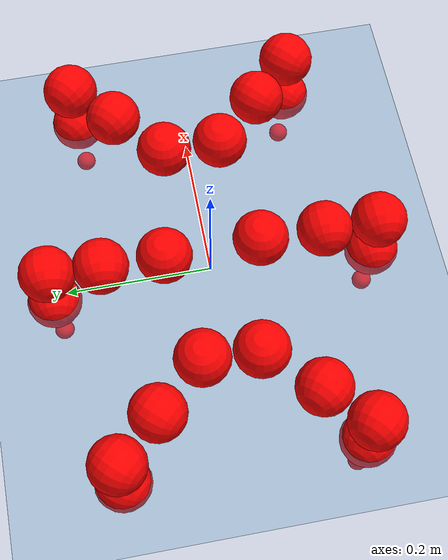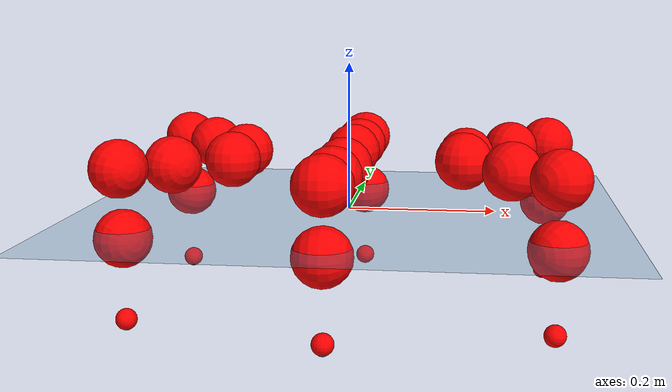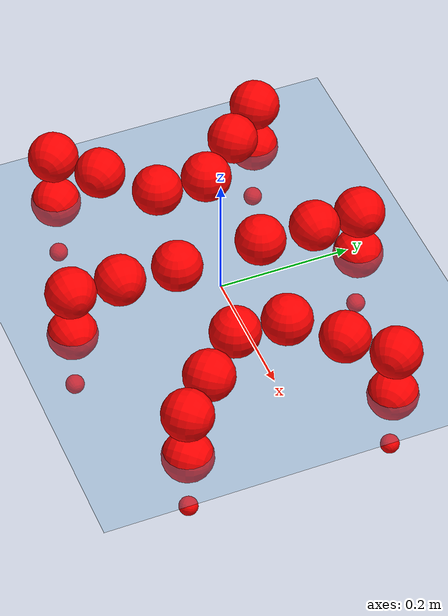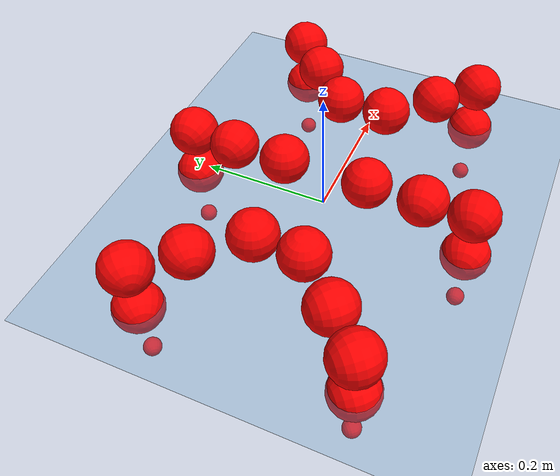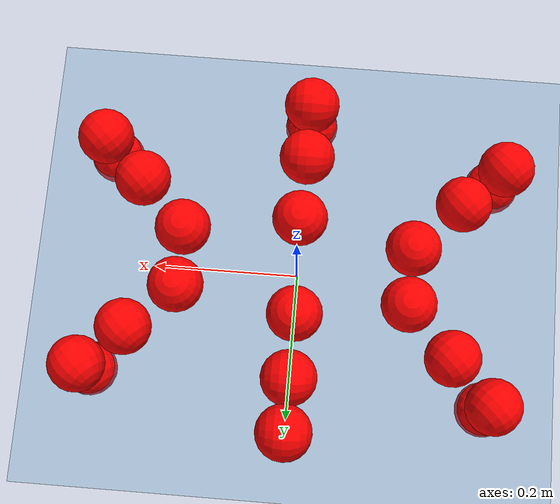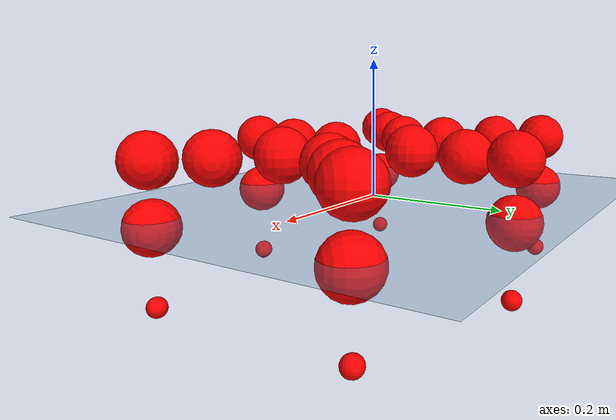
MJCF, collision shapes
<mujoco model="Golem">
  <compiler angle="radian" assetdir="assets" balanceinertia="true" inertiafromgeom="false"/>

  <option timestep="0.005" density="1.2" viscosity="2e-05"/>

  <size nkey="1"/>

  <visual>
    <quality shadowsize="8192"/>
    <map shadowclip="0.5"/>
  </visual>

  <default>
    <default class="/">
      <joint armature="0.01" damping="0.01" frictionloss="0.01"/>
      <geom contype="0" conaffinity="0" group="1" solref="-1000 -80"/>
      <site size="0.01 0.005 0.005" group="5"/>
      <general forcelimited="true" biastype="affine" gainprm="25" biasprm="0 -25 -0.5"/>
      <default class="visual">
        <geom type="mesh" group="2"/>
      </default>
      <default class="collision">
        <geom group="3"/>
      </default>
      <default class="foot">
        <geom size="0.01 0 0" condim="6" group="4" priority="1" solimp="0.015 1 0.01"/>
      </default>
      <default class="reward_collision_sphere">
        <geom group="5" rgba="1 0 0 1"/>
      </default>
    </default>
  </default>

  <asset>
    <texture type="skybox" colorspace="auto" name="//unnamed_texture_0" builtin="gradient" rgb1="0.95 0.95 0.95" rgb2="0.95 0.95 0.95" width="100" height="600"/>
    <texture type="2d" colorspace="auto" name="texplane" builtin="checker" rgb1="0.345 0.575 0.748" rgb2="0.345 0.575 0.748" markrgb="1 1 1" width="512" height="512"/>
    <material name="MatPlane" class="/" texture="texplane" texuniform="true" texrepeat="2 2" specular="0.9"/>
    <mesh name="body" class="/" file="body.stl" scale="0.001 0.001 0.001"/>
    <mesh name="coxa" class="/" file="coxa.stl" scale="0.001 0.001 0.001"/>
    <mesh name="femur" class="/" file="femur.stl" scale="0.001 0.001 0.001"/>
    <mesh name="tibia" class="/" file="tibia.stl" scale="0.001 0.001 0.001"/>
    <mesh name="tarsus" class="/" file="tarsus.stl" scale="0.001 0.001 0.001"/>
  </asset>

  <worldbody>
    <geom name="floor" class="/" size="100 100 0.125" type="plane" group="0" material="MatPlane"/>
    <light name="toplight_shadow" class="/" pos="0 0 5" dir="0.0990148 0.0990148 -0.990148" type="directional" ambient="0.04 0.04 0.04" diffuse="0.55 0.55 0.55" specular="0.12 0.12 0.12"/>
    <light name="toplight_fill" class="/" pos="0 0 5" dir="0.0990148 0.0990148 -0.990148" type="directional" castshadow="false" ambient="0.04 0.04 0.04" diffuse="0.3 0.3 0.3" specular="0.08 0.08 0.08"/>
    <body name="trunk" pos="0.00096401 -0.000840831 0.000175262" quat="1 1.79878e-05 -2.50219e-05 7.31837e-05">
      <inertial pos="0.0032133 -0.000332471 -0.00237556" quat="0.99994 0.00918594 -0.00514808 -0.00288353" mass="3.21714" diaginertia="0.0103865 0.00182132 0.019086"/>
      <joint name="//unnamed_joint_0" type="free"/>
      <geom name="//unnamed_geom_1" class="/" pos="0 0 0.0720136" quat="1 0 0 0" type="mesh" rgba="0.9 0.9 0.9 1" mesh="body"/>
      <site name="imu" class="/" pos="0.125161 -0.00502372 0.10038" size="0.00944028"/>
      <camera name="track" class="/" pos="0 -1.41988 0" quat="0.707107 0.707107 0 0" mode="trackcom"/>
      <camera name="ego_camera" class="/" pos="0.129601 0 0.112521" quat="-0.5 -0.5 0.5 0.5"/>
      <body name="coxa_RR" pos="-0.176369 -0.0579423 0.0709" quat="0.38278 -0.000113158 -0.000159783 -0.92384">
        <inertial pos="-3.00171e-05 -0.00218477 0.000351642" quat="0.999997 -0.000620343 0.00248456 0.00047335" mass="0.165525" diaginertia="0.00952266 0.00170679 0.0178279"/>
        <joint name="coxa_joint_RR" class="/" pos="0 0 0" axis="-0.00373312 -0.00413584 -0.999984" range="-3.19171 3.13387" armature="0.00919131" damping="0" frictionloss="0.00949003"/>
        <geom name="//unnamed_geom_2" class="/" type="mesh" rgba="0.2 0.2 0.2 1" mesh="coxa"/>
        <geom name="//unnamed_geom_3" class="reward_collision_sphere" size="0.0377611" pos="-0.0299079 0 0"/>
        <body name="femur_RR" pos="0.0621474 0.00125409 0.00212731" quat="0.500574 -0.500435 0.499805 0.499185">
          <inertial pos="-0.000201473 0.000532915 -0.00236894" quat="1 0.000400001 0.000118202 -0.000641976" mass="0.164021" diaginertia="0.00979638 0.00175014 0.0178889"/>
          <joint name="femur_joint_RR" class="/" pos="0 0 0" axis="0.00243955 0.0137134 -0.999903" stiffness="0.00240789" range="-3.14168 3.15222" armature="0.00937866" damping="0.0029485" frictionloss="0.0102078"/>
          <geom name="//unnamed_geom_4" class="/" type="mesh" rgba="0.9 0.9 0.9 1" mesh="femur"/>
          <geom name="//unnamed_geom_5" class="reward_collision_sphere" size="0.0377611"/>
          <body name="tibia_RR" pos="-0.0020778 -0.0765514 -0.00128265" quat="7.33325e-06 1 8.43225e-05 -4.25708e-05">
            <inertial pos="0.000764395 -0.00216014 -0.000594167" quat="0.99994 -0.00940301 -0.00435109 0.00344435" mass="0.167935" diaginertia="0.0101828 0.00179112 0.01794"/>
            <joint name="tibia_joint_RR" class="/" pos="0 0 0" axis="0.0142626 0.0054127 0.999884" stiffness="0.000852572" range="-3.08582 3.14165" armature="0.00939085" damping="0.0175007" frictionloss="0.00892025"/>
            <geom name="//unnamed_geom_6" class="/" type="mesh" rgba="0.2 0.2 0.2 1" mesh="tibia"/>
            <geom name="//unnamed_geom_7" class="reward_collision_sphere" size="0.0377611"/>
            <body name="tarsus_RR" pos="0.0895027 -0.00197119 -0.00256014" quat="0.999999 1.08585e-05 0.000388379 -0.00105116">
              <inertial pos="0.059136 -0.000302573 -0.00274663" quat="0.503503 0.502098 0.488904 0.505327" mass="0.17338" diaginertia="0.00992506 0.00184289 0.0174094"/>
              <joint name="tarsus_joint_RR" class="/" pos="0 0 0" axis="0.000428861 0.000121433 1" range="-3.19279 3.15589" armature="0.00926047" damping="0" frictionloss="0.0107719"/>
              <geom name="//unnamed_geom_8" class="/" type="mesh" rgba="0.9 0.9 0.9 1" mesh="tarsus"/>
              <geom name="foot_1" class="foot" size="0.0101841" pos="0.111656 0 0" quat="0 -0.707107 0 0.707107"/>
              <geom name="//unnamed_geom_10" class="reward_collision_sphere" size="0.0377611"/>
              <geom name="//unnamed_geom_11" class="reward_collision_sphere" size="0.0141604" pos="0.10717 0 0"/>
              <site name="foot_1" class="foot" pos="0.111656 0 0" quat="0 -0.707107 0 0.707107" size="0.00944028"/>
            </body>
          </body>
        </body>
      </body>
      <body name="coxa_RM" pos="4.0882e-05 -0.0970109 0.0699458" quat="0.707364 -0.000640895 0.000122054 -0.706849">
        <inertial pos="0.00293654 0.000496253 -0.0024186" quat="1 0.000456599 -0.000828501 -0.000131698" mass="0.168534" diaginertia="0.00977385 0.00187239 0.0182544"/>
        <joint name="coxa_joint_RM" class="/" pos="0 0 0" axis="-0.00469735 0.00104716 -0.999988" range="-3.15518 3.13035" armature="0.0108278" damping="0.00952699" frictionloss="0.00991109"/>
        <geom name="//unnamed_geom_12" class="/" type="mesh" rgba="0.2 0.2 0.2 1" mesh="coxa"/>
        <geom name="//unnamed_geom_13" class="reward_collision_sphere" size="0.0377611" pos="-0.0299079 0 0"/>
        <body name="femur_RM" pos="0.056611 -0.00300679 0.00138318" quat="0.500141 -0.50046 0.499629 0.49977">
          <inertial pos="0.00222823 -0.00270785 0.000526457" quat="0.999993 0.00129905 -0.00358048 -0.000169804" mass="0.162873" diaginertia="0.009227 0.00174548 0.016968"/>
          <joint name="femur_joint_RM" class="/" pos="0 0 0" axis="0.00360058 -0.012982 -0.999909" stiffness="0.00579938" range="-3.14216 3.08907" armature="0.00943327" damping="0.0269423" frictionloss="0.00839721"/>
          <geom name="//unnamed_geom_14" class="/" type="mesh" rgba="0.9 0.9 0.9 1" mesh="femur"/>
          <geom name="//unnamed_geom_15" class="reward_collision_sphere" size="0.0377611"/>
          <body name="tibia_RM" pos="-0.00167898 -0.0744076 -0.00120877" quat="0.00102944 0.999999 -0.000428285 0.000607193">
            <inertial pos="-0.00256346 0.00182848 -0.000921011" quat="0.999925 0.0024329 0.008486 0.008528" mass="0.161887" diaginertia="0.00953449 0.00176069 0.0176049"/>
            <joint name="tibia_joint_RM" class="/" pos="0 0 0" axis="-0.00116194 0.00455334 0.999989" range="-3.14316 3.19085" armature="0.00926378" damping="0.0179386" frictionloss="0.00928539"/>
            <geom name="//unnamed_geom_16" class="/" type="mesh" rgba="0.2 0.2 0.2 1" mesh="tibia"/>
            <geom name="//unnamed_geom_17" class="reward_collision_sphere" size="0.0377611"/>
            <body name="tarsus_RM" pos="0.0858508 -0.000298818 0.000753763" quat="1 1.25218e-05 -8.21926e-06 -6.20857e-06">
              <inertial pos="0.0625584 0.00118579 0.000645278" quat="0.500063 0.500692 0.499727 0.499517" mass="0.171881" diaginertia="0.00983829 0.00178527 0.0183753"/>
              <joint name="tarsus_joint_RM" class="/" pos="0 0 0" axis="-0.00032789 9.67826e-05 1" range="-3.19587 3.08271" armature="0.00939146" damping="0.00477009" frictionloss="0.00810986"/>
              <geom name="//unnamed_geom_18" class="/" type="mesh" rgba="0.9 0.9 0.9 1" mesh="tarsus"/>
              <geom name="foot_2" class="foot" size="0.0104374" pos="0.111656 0 0" quat="0 -0.707107 0 0.707107"/>
              <geom name="//unnamed_geom_20" class="reward_collision_sphere" size="0.0377611"/>
              <geom name="//unnamed_geom_21" class="reward_collision_sphere" size="0.0141604" pos="0.10717 0 0"/>
              <site name="foot_2" class="foot" pos="0.111656 0 0" quat="0 -0.707107 0 0.707107" size="0.00944028"/>
            </body>
          </body>
        </body>
      </body>
      <body name="coxa_RF" pos="0.177165 -0.0622514 0.0751066" quat="0.924129 0.000296761 6.97416e-05 -0.382081">
        <inertial pos="0.000502273 -0.0024819 0.00295105" quat="0.999922 -0.00845995 -0.00278362 -0.00878056" mass="0.156742" diaginertia="0.00937215 0.00174027 0.0173697"/>
        <joint name="coxa_joint_RF" class="/" pos="0 0 0" axis="-0.00438314 -0.00995359 -0.999941" range="-3.09242 3.17988" armature="0.00808005" damping="0" frictionloss="0.00935941"/>
        <geom name="//unnamed_geom_22" class="/" type="mesh" rgba="0.2 0.2 0.2 1" mesh="coxa"/>
        <geom name="//unnamed_geom_23" class="reward_collision_sphere" size="0.0377611" pos="-0.0299079 0 0"/>
        <body name="femur_RF" pos="0.0589223 -0.00214956 -0.00162592" quat="0.499938 -0.500045 0.500007 0.50001">
          <inertial pos="-0.00276223 0.00236546 -0.00032117" quat="0.999999 -0.000808141 -0.000171416 0.00089871" mass="0.167261" diaginertia="0.00987973 0.00186378 0.018403"/>
          <joint name="femur_joint_RF" class="/" pos="0 0 0" axis="0.00401266 -0.00204375 -0.99999" stiffness="0.00272311" range="-3.12283 3.10009" armature="0.00938659" damping="0.00168371" frictionloss="0.00854581"/>
          <geom name="//unnamed_geom_24" class="/" type="mesh" rgba="0.9 0.9 0.9 1" mesh="femur"/>
          <geom name="//unnamed_geom_25" class="reward_collision_sphere" size="0.0377611"/>
          <body name="tibia_RF" pos="-0.000105045 -0.0789709 0.00126675" quat="-1.99371e-05 1 5.99305e-06 0.000120134">
            <inertial pos="0.000157405 0.000196092 -0.0020117" quat="0.999908 0.0015143 0.0115325 0.00698547" mass="0.165491" diaginertia="0.00982453 0.00173825 0.0185899"/>
            <joint name="tibia_joint_RF" class="/" pos="0 0 0" axis="-0.00106041 -0.00218034 0.999997" range="-3.14009 3.18236" armature="0.00963329" damping="0.00187389" frictionloss="0.0105305"/>
            <geom name="//unnamed_geom_26" class="/" type="mesh" rgba="0.2 0.2 0.2 1" mesh="tibia"/>
            <geom name="//unnamed_geom_27" class="reward_collision_sphere" size="0.0377611"/>
            <body name="tarsus_RF" pos="0.0870427 -0.000482151 0.000644033" quat="0.999999 0.00107659 -0.000613757 -0.000637684">
              <inertial pos="0.0583654 -0.000529978 0.000108945" quat="0.499806 0.499876 0.500205 0.500113" mass="0.172604" diaginertia="0.0101095 0.00179892 0.0181063"/>
              <joint name="tarsus_joint_RF" class="/" pos="0 0 0" axis="-0.0119538 -0.00233047 0.999926" stiffness="0.0235145" range="-3.08432 3.13524" armature="0.00902706" damping="0.000413727" frictionloss="0.00905716"/>
              <geom name="//unnamed_geom_28" class="/" type="mesh" rgba="0.9 0.9 0.9 1" mesh="tarsus"/>
              <geom name="foot_3" class="foot" size="0.00919135" pos="0.111656 0 0" quat="0 -0.707107 0 0.707107"/>
              <geom name="//unnamed_geom_30" class="reward_collision_sphere" size="0.0377611"/>
              <geom name="//unnamed_geom_31" class="reward_collision_sphere" size="0.0141604" pos="0.10717 0 0"/>
              <site name="foot_3" class="foot" pos="0.111656 0 0" quat="0 -0.707107 0 0.707107" size="0.00944028"/>
            </body>
          </body>
        </body>
      </body>
      <body name="coxa_LR" pos="-0.174262 0.0608443 0.0722033" quat="0.382554 5.54122e-05 -8.66558e-05 0.923933">
        <inertial pos="-0.00260413 -0.00310516 0.00150766" quat="0.999901 -0.00180338 0.00954744 0.0101799" mass="0.160559" diaginertia="0.00972017 0.00167988 0.016997"/>
        <joint name="coxa_joint_LR" class="/" pos="0 0 0" axis="0.000139749 -0.000416263 -1" stiffness="0.00856878" range="-3.1851 3.17426" armature="0.0101337" damping="0.00754949" frictionloss="0.00918153"/>
        <geom name="//unnamed_geom_32" class="/" type="mesh" rgba="0.2 0.2 0.2 1" mesh="coxa"/>
        <geom name="//unnamed_geom_33" class="reward_collision_sphere" size="0.0377611" pos="-0.0299079 0 0"/>
        <body name="femur_LR" pos="0.0606877 -0.00436555 0.000960214" quat="0.500116 -0.499902 0.49994 0.500043">
          <inertial pos="-0.00101969 -0.00166039 -0.00110815" quat="1 -0.000389249 0.000502907 0.000431718" mass="0.167807" diaginertia="0.00958975 0.00186898 0.0176168"/>
          <joint name="femur_joint_LR" class="/" pos="0 0 0" axis="-0.000470962 0.000604101 1" range="-3.08811 3.14291" armature="0.00992516" damping="0.00760839" frictionloss="0.00950443"/>
          <geom name="//unnamed_geom_34" class="/" type="mesh" rgba="0.9 0.9 0.9 1" mesh="femur"/>
          <geom name="//unnamed_geom_35" class="reward_collision_sphere" size="0.0377611"/>
          <body name="tibia_LR" pos="-0.000519505 -0.0806123 -0.00233273" quat="0.000899138 0.999999 0.000503595 -0.00052448">
            <inertial pos="0.0023479 -0.00277899 -0.00156376" quat="0.999908 -0.00233206 0.00858202 0.0102325" mass="0.165093" diaginertia="0.00944806 0.00173842 0.0179006"/>
            <joint name="tibia_joint_LR" class="/" pos="0 0 0" axis="0.00720903 -0.001943 -0.999972" range="-3.09492 3.19011" armature="0.00969174" damping="0" frictionloss="0.00951119"/>
            <geom name="//unnamed_geom_36" class="/" type="mesh" rgba="0.2 0.2 0.2 1" mesh="tibia"/>
            <geom name="//unnamed_geom_37" class="reward_collision_sphere" size="0.0377611"/>
            <body name="tarsus_LR" pos="0.0858105 0.000378332 -0.00145702" quat="0.999999 0.000217272 0.00120486 0.000600957">
              <inertial pos="0.0602612 -0.00200332 -0.00244161" quat="0.494444 0.503554 0.501003 0.500953" mass="0.169225" diaginertia="0.0100825 0.0017667 0.0175559"/>
              <joint name="tarsus_joint_LR" class="/" pos="0 0 0" axis="-0.0027476 0.0134179 -0.999906" range="-3.1703 3.08924" armature="0.00817975" damping="0" frictionloss="0.00828453"/>
              <geom name="//unnamed_geom_38" class="/" type="mesh" rgba="0.9 0.9 0.9 1" mesh="tarsus"/>
              <geom name="foot_4" class="foot" size="0.0101047" pos="0.111656 0 0" quat="0.707107 0 -0.707107 0"/>
              <geom name="//unnamed_geom_40" class="reward_collision_sphere" size="0.0377611"/>
              <geom name="//unnamed_geom_41" class="reward_collision_sphere" size="0.0141604" pos="0.10717 0 0"/>
              <site name="foot_4" class="foot" pos="0.111656 0 0" quat="0.707107 0 -0.707107 0" size="0.00944028"/>
            </body>
          </body>
        </body>
      </body>
      <body name="coxa_LM" pos="-0.00258422 0.093407 0.0711772" quat="0.707233 -5.14217e-05 -9.33814e-05 0.706981">
        <inertial pos="-0.000175318 -0.00279423 0.00149566" quat="0.999909 -0.0126198 -0.00303288 0.00359013" mass="0.166504" diaginertia="0.0101587 0.00185083 0.0184648"/>
        <joint name="coxa_joint_LM" class="/" pos="0 0 0" axis="-0.00139282 -0.00866642 -0.999961" range="-3.13808 3.13191" armature="0.0096581" damping="0.0150796" frictionloss="0.0106237"/>
        <geom name="//unnamed_geom_42" class="/" type="mesh" rgba="0.2 0.2 0.2 1" mesh="coxa"/>
        <geom name="//unnamed_geom_43" class="reward_collision_sphere" size="0.0377611" pos="-0.0299079 0 0"/>
        <body name="femur_LM" pos="0.0551764 -0.000733066 -0.00196701" quat="0.500048 -0.499977 0.500025 0.49995">
          <inertial pos="0.00272575 0.000665611 -5.31181e-05" quat="0.999901 0.000574854 -0.0114544 -0.00814253" mass="0.17749" diaginertia="0.0098674 0.00191892 0.0185744"/>
          <joint name="femur_joint_LM" class="/" pos="0 0 0" axis="-0.00318303 0.000385805 0.999995" range="-3.13568 3.12091" armature="0.0100353" damping="0.0130196" frictionloss="0.00815104"/>
          <geom name="//unnamed_geom_44" class="/" type="mesh" rgba="0.9 0.9 0.9 1" mesh="femur"/>
          <geom name="//unnamed_geom_45" class="reward_collision_sphere" size="0.0377611"/>
          <body name="tibia_LM" pos="-0.00184356 -0.0708715 -0.000940332" quat="0.00102146 0.999999 0.000666762 0.000415851">
            <inertial pos="0.00257612 -0.000287762 -0.00275616" quat="0.999915 -0.00638028 0.010587 0.0041091" mass="0.171527" diaginertia="0.0100031 0.00187271 0.0182501"/>
            <joint name="tibia_joint_LM" class="/" pos="0 0 0" axis="0.00745168 -0.0104112 -0.999918" range="-3.14579 3.14025" armature="0.0092786" damping="0.00356206" frictionloss="0.00811297"/>
            <geom name="//unnamed_geom_46" class="/" type="mesh" rgba="0.2 0.2 0.2 1" mesh="tibia"/>
            <geom name="//unnamed_geom_47" class="reward_collision_sphere" size="0.0377611"/>
            <body name="tarsus_LM" pos="0.0853018 0.000996395 -0.000955686" quat="0.999999 2.21852e-05 -0.000623294 0.00103669">
              <inertial pos="0.0596528 0.00092422 0.00227907" quat="0.497557 0.49542 0.511023 0.495834" mass="0.176147" diaginertia="0.0102034 0.00180058 0.0182432"/>
              <joint name="tarsus_joint_LM" class="/" pos="0 0 0" axis="0.00894309 -0.000158531 -0.99996" stiffness="0.00829541" range="-3.15834 3.15483" armature="0.0097497" damping="0" frictionloss="0.0106779"/>
              <geom name="//unnamed_geom_48" class="/" type="mesh" rgba="0.9 0.9 0.9 1" mesh="tarsus"/>
              <geom name="foot_5" class="foot" size="0.00969833" pos="0.111656 0 0" quat="0.707107 0 -0.707107 0"/>
              <geom name="//unnamed_geom_50" class="reward_collision_sphere" size="0.0377611"/>
              <geom name="//unnamed_geom_51" class="reward_collision_sphere" size="0.0141604" pos="0.10717 0 0"/>
              <site name="foot_5" class="foot" pos="0.111656 0 0" quat="0.707107 0 -0.707107 0" size="0.00944028"/>
            </body>
          </body>
        </body>
      </body>
      <body name="coxa_LF" pos="0.179656 0.0582651 0.0716079" quat="0.923854 -1.71151e-05 0.000262817 0.382746">
        <inertial pos="0.000976823 -0.000260502 0.00284081" quat="0.999902 0.0114196 0.00542278 0.00608228" mass="0.163458" diaginertia="0.0095652 0.00186756 0.0175036"/>
        <joint name="coxa_joint_LF" class="/" pos="0 0 0" axis="0.0161417 -0.00390827 -0.999862" range="-3.12015 3.14258" armature="0.00802374" damping="0.000585318" frictionloss="0.0102557"/>
        <geom name="//unnamed_geom_52" class="/" type="mesh" rgba="0.2 0.2 0.2 1" mesh="coxa"/>
        <geom name="//unnamed_geom_53" class="reward_collision_sphere" size="0.0377611" pos="-0.0299079 0 0"/>
        <body name="femur_LF" pos="0.0579993 -0.000440967 0.00142331" quat="0.500071 -0.500042 0.499741 0.500146">
          <inertial pos="-0.00193649 -0.00105305 0.00165254" quat="0.999991 -0.0030077 -0.000610722 0.00276377" mass="0.163713" diaginertia="0.0101183 0.00177207 0.0180399"/>
          <joint name="femur_joint_LF" class="/" pos="0 0 0" axis="5.5852e-05 -0.000256191 1" range="-3.14438 3.14961" armature="0.0106178" damping="0.0105544" frictionloss="0.00931188"/>
          <geom name="//unnamed_geom_54" class="/" type="mesh" rgba="0.9 0.9 0.9 1" mesh="femur"/>
          <geom name="//unnamed_geom_55" class="reward_collision_sphere" size="0.0377611"/>
          <body name="tibia_LF" pos="-0.000899644 -0.0767676 -0.00131078" quat="-7.91909e-05 0.999999 0.000678145 0.00099655">
            <inertial pos="-0.00145049 -0.00163527 0.00158013" quat="1 -6.87918e-05 -3.4609e-05 -4.63282e-05" mass="0.167381" diaginertia="0.0093927 0.00176607 0.0178253"/>
            <joint name="tibia_joint_LF" class="/" pos="0 0 0" axis="-0.000744854 0.00291007 -0.999995" range="-3.14795 3.11756" armature="0.0108684" damping="0" frictionloss="0.00955686"/>
            <geom name="//unnamed_geom_56" class="/" type="mesh" rgba="0.2 0.2 0.2 1" mesh="tibia"/>
            <geom name="//unnamed_geom_57" class="reward_collision_sphere" size="0.0377611"/>
            <body name="tarsus_LF" pos="0.0850341 -0.000996191 0.00169591" quat="1 0.000372658 0.000162918 -1.46934e-05">
              <inertial pos="0.0593511 0.00286361 0.000931863" quat="0.490703 0.508511 0.497917 0.5027" mass="0.158487" diaginertia="0.00975222 0.00169886 0.0179507"/>
              <joint name="tarsus_joint_LF" class="/" pos="0 0 0" axis="0.00786196 0.00423497 -0.99996" range="-3.15068 3.14578" armature="0.010907" damping="0.00576585" frictionloss="0.00846754"/>
              <geom name="//unnamed_geom_58" class="/" type="mesh" rgba="0.9 0.9 0.9 1" mesh="tarsus"/>
              <geom name="foot_6" class="foot" size="0.00974468" pos="0.111656 0 0" quat="0.707107 0 -0.707107 0"/>
              <geom name="//unnamed_geom_60" class="reward_collision_sphere" size="0.0377611"/>
              <geom name="//unnamed_geom_61" class="reward_collision_sphere" size="0.0141604" pos="0.10717 0 0"/>
              <site name="foot_6" class="foot" pos="0.111656 0 0" quat="0.707107 0 -0.707107 0" size="0.00944028"/>
            </body>
          </body>
        </body>
      </body>
    </body>
  </worldbody>

  <contact>
    <pair class="/" geom1="floor" geom2="foot_1" name="//unnamed_contact_0"/>
    <pair class="/" geom1="floor" geom2="foot_2" name="//unnamed_contact_1"/>
    <pair class="/" geom1="floor" geom2="foot_3" name="//unnamed_contact_2"/>
    <pair class="/" geom1="floor" geom2="foot_4" name="//unnamed_contact_3"/>
    <pair class="/" geom1="floor" geom2="foot_5" name="//unnamed_contact_4"/>
    <pair class="/" geom1="floor" geom2="foot_6" name="//unnamed_contact_5"/>
  </contact>

  <actuator>
    <general name="coxa_joint_RR" class="/" joint="coxa_joint_RR" forcerange="-6.66425 6.66425" gainprm="24.2845" biasprm="0 -24.2845 -0.479138"/>
    <general name="femur_joint_RR" class="/" joint="femur_joint_RR" forcerange="-7.14769 7.14769" gainprm="24.2845" biasprm="0 -24.2845 -0.479138"/>
    <general name="tibia_joint_RR" class="/" joint="tibia_joint_RR" forcerange="-6.83145 6.83145" gainprm="24.2845" biasprm="0 -24.2845 -0.479138"/>
    <general name="tarsus_joint_RR" class="/" joint="tarsus_joint_RR" forcerange="-7.58531 7.58531" gainprm="24.2845" biasprm="0 -24.2845 -0.479138"/>
    <general name="coxa_joint_RM" class="/" joint="coxa_joint_RM" forcerange="-6.62689 6.62689" gainprm="24.2845" biasprm="0 -24.2845 -0.479138"/>
    <general name="femur_joint_RM" class="/" joint="femur_joint_RM" forcerange="-6.93253 6.93253" gainprm="24.2845" biasprm="0 -24.2845 -0.479138"/>
    <general name="tibia_joint_RM" class="/" joint="tibia_joint_RM" forcerange="-7.00892 7.00892" gainprm="24.2845" biasprm="0 -24.2845 -0.479138"/>
    <general name="tarsus_joint_RM" class="/" joint="tarsus_joint_RM" forcerange="-7.46723 7.46723" gainprm="24.2845" biasprm="0 -24.2845 -0.479138"/>
    <general name="coxa_joint_RF" class="/" joint="coxa_joint_RF" forcerange="-7.46094 7.46094" gainprm="24.2845" biasprm="0 -24.2845 -0.479138"/>
    <general name="femur_joint_RF" class="/" joint="femur_joint_RF" forcerange="-6.26812 6.26812" gainprm="24.2845" biasprm="0 -24.2845 -0.479138"/>
    <general name="tibia_joint_RF" class="/" joint="tibia_joint_RF" forcerange="-7.56968 7.56968" gainprm="24.2845" biasprm="0 -24.2845 -0.479138"/>
    <general name="tarsus_joint_RF" class="/" joint="tarsus_joint_RF" forcerange="-6.18563 6.18563" gainprm="24.2845" biasprm="0 -24.2845 -0.479138"/>
    <general name="coxa_joint_LR" class="/" joint="coxa_joint_LR" forcerange="-6.26039 6.26039" gainprm="24.2845" biasprm="0 -24.2845 -0.479138"/>
    <general name="femur_joint_LR" class="/" joint="femur_joint_LR" forcerange="-6.87199 6.87199" gainprm="24.2845" biasprm="0 -24.2845 -0.479138"/>
    <general name="tibia_joint_LR" class="/" joint="tibia_joint_LR" forcerange="-6.93968 6.93968" gainprm="24.2845" biasprm="0 -24.2845 -0.479138"/>
    <general name="tarsus_joint_LR" class="/" joint="tarsus_joint_LR" forcerange="-6.25547 6.25547" gainprm="24.2845" biasprm="0 -24.2845 -0.479138"/>
    <general name="coxa_joint_LM" class="/" joint="coxa_joint_LM" forcerange="-7.11509 7.11509" gainprm="24.2845" biasprm="0 -24.2845 -0.479138"/>
    <general name="femur_joint_LM" class="/" joint="femur_joint_LM" forcerange="-6.21603 6.21603" gainprm="24.2845" biasprm="0 -24.2845 -0.479138"/>
    <general name="tibia_joint_LM" class="/" joint="tibia_joint_LM" forcerange="-6.60092 6.60092" gainprm="24.2845" biasprm="0 -24.2845 -0.479138"/>
    <general name="tarsus_joint_LM" class="/" joint="tarsus_joint_LM" forcerange="-7.06284 7.06284" gainprm="24.2845" biasprm="0 -24.2845 -0.479138"/>
    <general name="coxa_joint_LF" class="/" joint="coxa_joint_LF" forcerange="-6.19133 6.19133" gainprm="24.2845" biasprm="0 -24.2845 -0.479138"/>
    <general name="femur_joint_LF" class="/" joint="femur_joint_LF" forcerange="-6.25666 6.25666" gainprm="24.2845" biasprm="0 -24.2845 -0.479138"/>
    <general name="tibia_joint_LF" class="/" joint="tibia_joint_LF" forcerange="-7.51948 7.51948" gainprm="24.2845" biasprm="0 -24.2845 -0.479138"/>
    <general name="tarsus_joint_LF" class="/" joint="tarsus_joint_LF" forcerange="-6.66369 6.66369" gainprm="24.2845" biasprm="0 -24.2845 -0.479138"/>
  </actuator>

  <sensor>
    <gyro site="imu" name="imu_angular_velocity"/>
    <velocimeter site="imu" name="imu_linear_velocity"/>
    <framelinvel objtype="site" objname="foot_1" name="foot_1_global_linear_velocity"/>
    <framelinvel objtype="site" objname="foot_2" name="foot_2_global_linear_velocity"/>
    <framelinvel objtype="site" objname="foot_3" name="foot_3_global_linear_velocity"/>
    <framelinvel objtype="site" objname="foot_4" name="foot_4_global_linear_velocity"/>
    <framelinvel objtype="site" objname="foot_5" name="foot_5_global_linear_velocity"/>
    <framelinvel objtype="site" objname="foot_6" name="foot_6_global_linear_velocity"/>
  </sensor>

  <keyframe>
    <key name="home" qpos="0 0 0.1457 1 0 0 0 0 0 0 0 0 0 0 0 0 0 0 0 0 0 0 0 0 0 0 0 0 0 0 0"/>
  </keyframe>
</mujoco>
